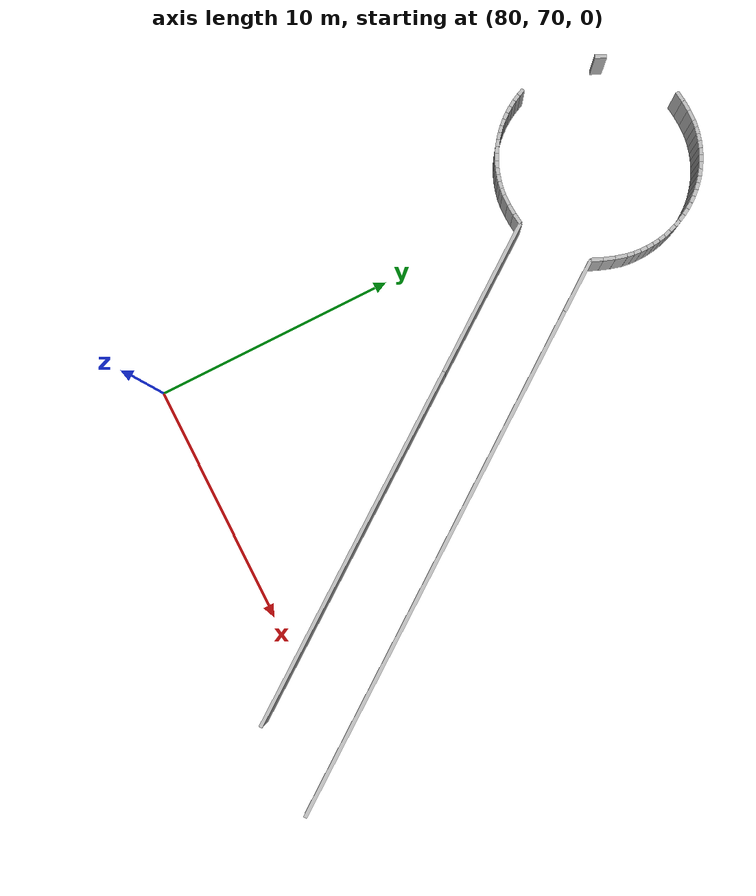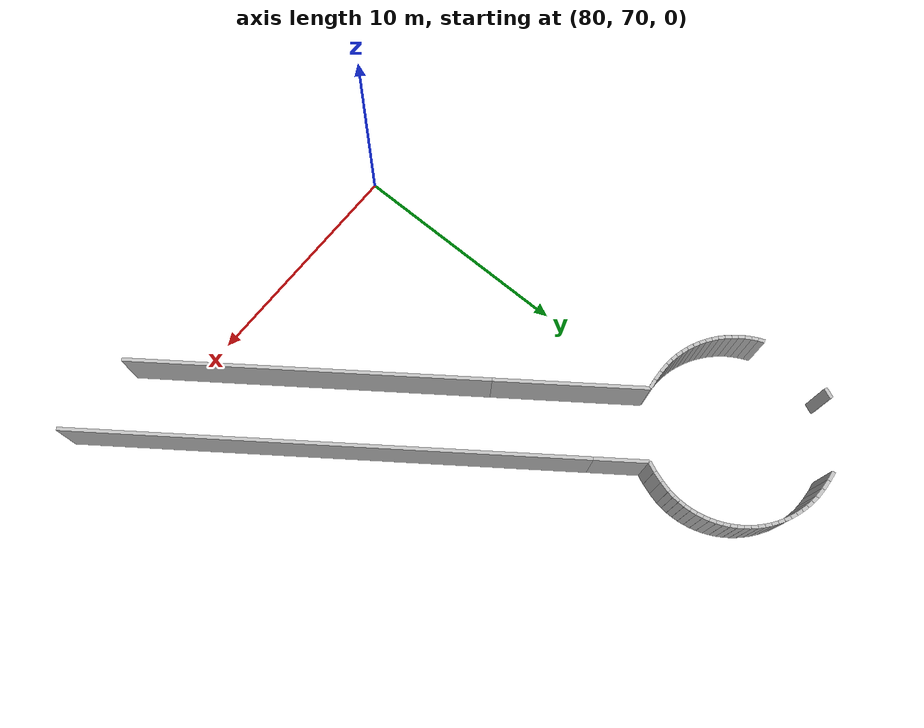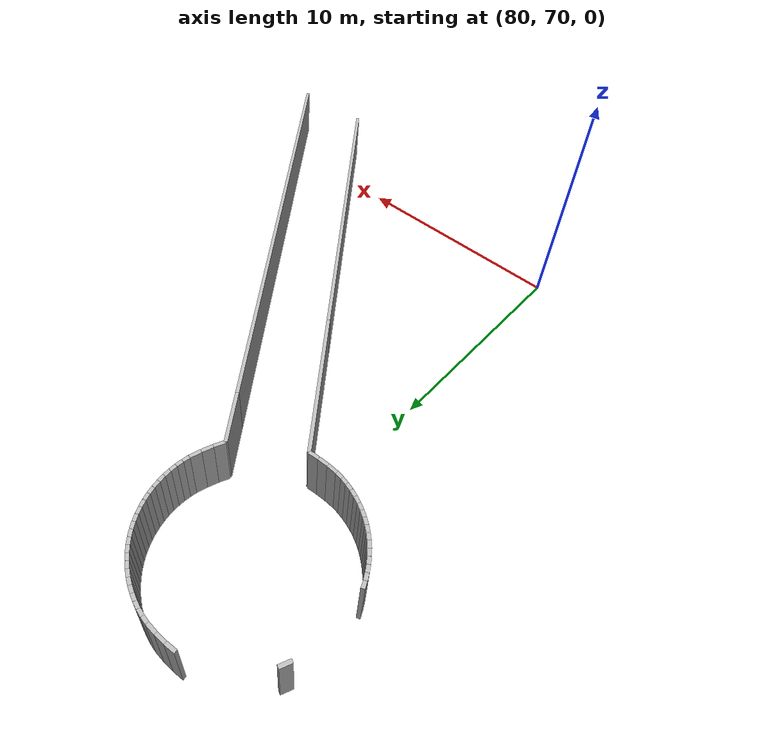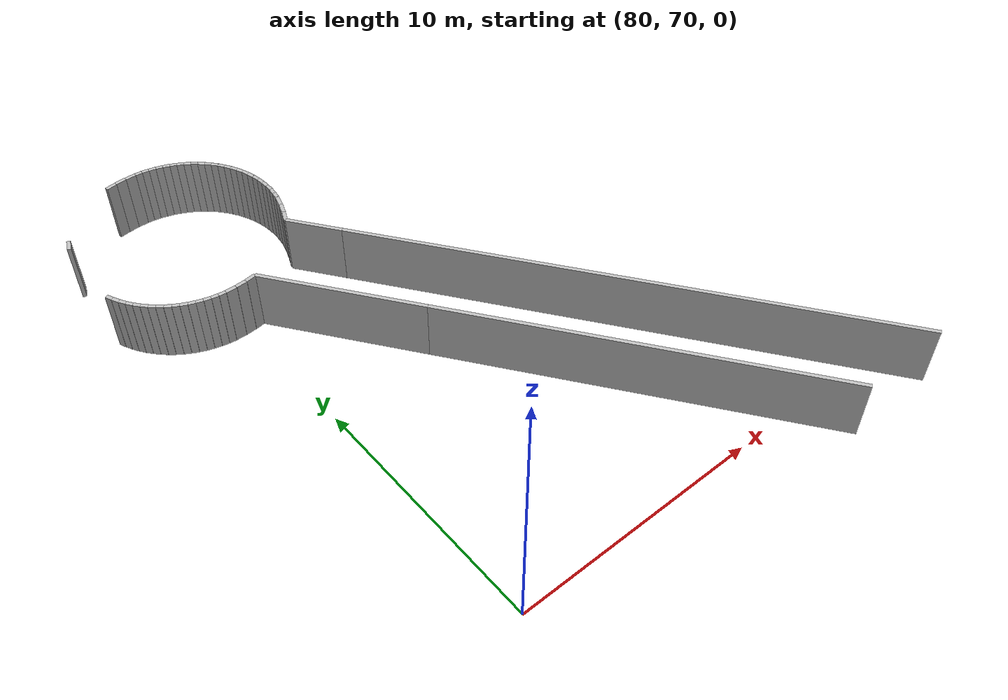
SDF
<sdf version="1.6">
 <model name="sps_2314">
  <static>1</static>
  <allow_auto_disable>0</allow_auto_disable>
  <link name="Wall168">
   <collision name="collision"><geometry><box><size>15.403 0.15 2.5</size></box></geometry></collision>
   <visual name="visual">
    <geometry><box><size>15.403 0.15 2.5</size></box></geometry>
    <transparency>0.0</transparency>
   </visual>
   <pose>89.0073 74.1157 1.25 0 -0 2.20088</pose>
  </link>
  <link name="Wall169">
   <collision name="collision"><geometry><box><size>6.53348 0.15 2.5</size></box></geometry></collision>
   <visual name="visual">
    <geometry><box><size>6.53348 0.15 2.5</size></box></geometry>
    <transparency>0.0</transparency>
   </visual>
   <pose>82.5446 82.9778 1.25 0 -0 2.20088</pose>
  </link>
  <link name="Wall401">
   <collision name="collision"><geometry><box><size>21.9145 0.15 2.5</size></box></geometry></collision>
   <visual name="visual">
    <geometry><box><size>21.9145 0.15 2.5</size></box></geometry>
    <transparency>0.0</transparency>
   </visual>
   <pose>90.9256 76.7463 1.25 0 -0 2.20088</pose>
  </link>
  <link name="Wall402">
   <collision name="collision"><geometry><box><size>2.26266 0.15 2.5</size></box></geometry></collision>
   <visual name="visual">
    <geometry><box><size>2.26266 0.15 2.5</size></box></geometry>
    <transparency>0.0</transparency>
   </visual>
   <pose>83.8028 86.5136 1.25 0 -0 2.20088</pose>
  </link>
  <link name="Wall4710">
   <collision name="collision"><geometry><box><size>0.474831 0.15 2.5</size></box></geometry></collision>
   <visual name="visual">
    <geometry><box><size>0.474831 0.15 2.5</size></box></geometry>
    <transparency>0.0</transparency>
   </visual>
   <pose>83.2309 87.6454 1.25 0 -0 1.16052</pose>
  </link>
  <link name="Wall4711">
   <collision name="collision"><geometry><box><size>0.474942 0.15 2.5</size></box></geometry></collision>
   <visual name="visual">
    <geometry><box><size>0.474942 0.15 2.5</size></box></geometry>
    <transparency>0.0</transparency>
   </visual>
   <pose>83.4048 88.087 1.25 0 -0 1.2308</pose>
  </link>
  <link name="Wall4712">
   <collision name="collision"><geometry><box><size>0.474892 0.15 2.5</size></box></geometry></collision>
   <visual name="visual">
    <geometry><box><size>0.474892 0.15 2.5</size></box></geometry>
    <transparency>0.0</transparency>
   </visual>
   <pose>83.5474 88.5397 1.25 0 -0 1.30044</pose>
  </link>
  <link name="Wall4713">
   <collision name="collision"><geometry><box><size>0.279036 0.15 2.5</size></box></geometry></collision>
   <visual name="visual">
    <geometry><box><size>0.279036 0.15 2.5</size></box></geometry>
    <transparency>0.0</transparency>
   </visual>
   <pose>83.6328 88.9063 1.25 0 -0 1.41309</pose>
  </link>
  <link name="Wall4714">
   <collision name="collision"><geometry><box><size>0.279262 0.15 2.5</size></box></geometry></collision>
   <visual name="visual">
    <geometry><box><size>0.279262 0.15 2.5</size></box></geometry>
    <transparency>0.0</transparency>
   </visual>
   <pose>83.6669 89.1832 1.25 0 -0 1.48348</pose>
  </link>
  <link name="Wall4715">
   <collision name="collision"><geometry><box><size>0.279277 0.15 2.5</size></box></geometry></collision>
   <visual name="visual">
    <geometry><box><size>0.279277 0.15 2.5</size></box></geometry>
    <transparency>0.0</transparency>
   </visual>
   <pose>83.6814 89.4619 1.25 0 -0 1.55353</pose>
  </link>
  <link name="Wall4716">
   <collision name="collision"><geometry><box><size>0.279129 0.15 2.5</size></box></geometry></collision>
   <visual name="visual">
    <geometry><box><size>0.279129 0.15 2.5</size></box></geometry>
    <transparency>0.0</transparency>
   </visual>
   <pose>83.6766 89.7409 1.25 0 -0 1.62308</pose>
  </link>
  <link name="Wall4717">
   <collision name="collision"><geometry><box><size>0.279276 0.15 2.5</size></box></geometry></collision>
   <visual name="visual">
    <geometry><box><size>0.279276 0.15 2.5</size></box></geometry>
    <transparency>0.0</transparency>
   </visual>
   <pose>83.6524 90.0189 1.25 0 -0 1.69217</pose>
  </link>
  <link name="Wall4718">
   <collision name="collision"><geometry><box><size>0.279108 0.15 2.5</size></box></geometry></collision>
   <visual name="visual">
    <geometry><box><size>0.279108 0.15 2.5</size></box></geometry>
    <transparency>0.0</transparency>
   </visual>
   <pose>83.6088 90.2945 1.25 0 -0 1.76266</pose>
  </link>
  <link name="Wall4719">
   <collision name="collision"><geometry><box><size>0.279094 0.15 2.5</size></box></geometry></collision>
   <visual name="visual">
    <geometry><box><size>0.279094 0.15 2.5</size></box></geometry>
    <transparency>0.0</transparency>
   </visual>
   <pose>83.5461 90.5663 1.25 0 -0 1.83248</pose>
  </link>
  <link name="Wall4720">
   <collision name="collision"><geometry><box><size>0.279281 0.15 2.5</size></box></geometry></collision>
   <visual name="visual">
    <geometry><box><size>0.279281 0.15 2.5</size></box></geometry>
    <transparency>0.0</transparency>
   </visual>
   <pose>83.4645 90.8331 1.25 0 -0 1.90271</pose>
  </link>
  <link name="Wall4721">
   <collision name="collision"><geometry><box><size>0.279157 0.15 2.5</size></box></geometry></collision>
   <visual name="visual">
    <geometry><box><size>0.279157 0.15 2.5</size></box></geometry>
    <transparency>0.0</transparency>
   </visual>
   <pose>83.3646 91.0936 1.25 0 -0 1.97173</pose>
  </link>
  <link name="Wall4722">
   <collision name="collision"><geometry><box><size>0.279161 0.15 2.5</size></box></geometry></collision>
   <visual name="visual">
    <geometry><box><size>0.279161 0.15 2.5</size></box></geometry>
    <transparency>0.0</transparency>
   </visual>
   <pose>83.2468 91.3465 1.25 0 -0 2.04168</pose>
  </link>
  <link name="Wall4723">
   <collision name="collision"><geometry><box><size>0.27925 0.15 2.5</size></box></geometry></collision>
   <visual name="visual">
    <geometry><box><size>0.27925 0.15 2.5</size></box></geometry>
    <transparency>0.0</transparency>
   </visual>
   <pose>83.1115 91.5906 1.25 0 -0 2.11174</pose>
  </link>
  <link name="Wall4724">
   <collision name="collision"><geometry><box><size>0.279196 0.15 2.5</size></box></geometry></collision>
   <visual name="visual">
    <geometry><box><size>0.279196 0.15 2.5</size></box></geometry>
    <transparency>0.0</transparency>
   </visual>
   <pose>82.9596 91.8247 1.25 0 -0 2.18093</pose>
  </link>
  <link name="Wall4725">
   <collision name="collision"><geometry><box><size>0.279133 0.15 2.5</size></box></geometry></collision>
   <visual name="visual">
    <geometry><box><size>0.279133 0.15 2.5</size></box></geometry>
    <transparency>0.0</transparency>
   </visual>
   <pose>82.7919 92.0476 1.25 0 -0 2.25117</pose>
  </link>
  <link name="Wall4726">
   <collision name="collision"><geometry><box><size>0.279366 0.15 2.5</size></box></geometry></collision>
   <visual name="visual">
    <geometry><box><size>0.279366 0.15 2.5</size></box></geometry>
    <transparency>0.0</transparency>
   </visual>
   <pose>82.6088 92.2583 1.25 0 -0 2.32081</pose>
  </link>
  <link name="Wall4727">
   <collision name="collision"><geometry><box><size>0.279188 0.15 2.5</size></box></geometry></collision>
   <visual name="visual">
    <geometry><box><size>0.279188 0.15 2.5</size></box></geometry>
    <transparency>0.0</transparency>
   </visual>
   <pose>82.4116 92.4557 1.25 0 -0 2.39098</pose>
  </link>
  <link name="Wall4728">
   <collision name="collision"><geometry><box><size>0.279295 0.15 2.5</size></box></geometry></collision>
   <visual name="visual">
    <geometry><box><size>0.279295 0.15 2.5</size></box></geometry>
    <transparency>0.0</transparency>
   </visual>
   <pose>82.2009 92.6388 1.25 0 -0 2.46084</pose>
  </link>
  <link name="Wall4729">
   <collision name="collision"><geometry><box><size>0.279136 0.15 2.5</size></box></geometry></collision>
   <visual name="visual">
    <geometry><box><size>0.279136 0.15 2.5</size></box></geometry>
    <transparency>0.0</transparency>
   </visual>
   <pose>81.9781 92.8068 1.25 0 -0 2.53024</pose>
  </link>
  <link name="Wall4730">
   <collision name="collision"><geometry><box><size>0.279094 0.15 2.5</size></box></geometry></collision>
   <visual name="visual">
    <geometry><box><size>0.279094 0.15 2.5</size></box></geometry>
    <transparency>0.0</transparency>
   </visual>
   <pose>81.7443 92.9588 1.25 0 -0 2.60031</pose>
  </link>
  <link name="Wall4731">
   <collision name="collision"><geometry><box><size>0.279216 0.15 2.5</size></box></geometry></collision>
   <visual name="visual">
    <geometry><box><size>0.279216 0.15 2.5</size></box></geometry>
    <transparency>0.0</transparency>
   </visual>
   <pose>81.5003 93.0941 1.25 0 -0 2.67032</pose>
  </link>
  <link name="Wall4732">
   <collision name="collision"><geometry><box><size>0.279252 0.15 2.5</size></box></geometry></collision>
   <visual name="visual">
    <geometry><box><size>0.279252 0.15 2.5</size></box></geometry>
    <transparency>0.0</transparency>
   </visual>
   <pose>81.2474 93.2121 1.25 0 -0 2.73986</pose>
  </link>
  <link name="Wall4733">
   <collision name="collision"><geometry><box><size>0.279223 0.15 2.5</size></box></geometry></collision>
   <visual name="visual">
    <geometry><box><size>0.279223 0.15 2.5</size></box></geometry>
    <transparency>0.0</transparency>
   </visual>
   <pose>80.9869 93.3122 1.25 0 -0 2.80961</pose>
  </link>
  <link name="Wall4734">
   <collision name="collision"><geometry><box><size>0.2792 0.15 2.5</size></box></geometry></collision>
   <visual name="visual">
    <geometry><box><size>0.2792 0.15 2.5</size></box></geometry>
    <transparency>0.0</transparency>
   </visual>
   <pose>80.7201 93.3939 1.25 0 -0 2.87933</pose>
  </link>
  <link name="Wall4735">
   <collision name="collision"><geometry><box><size>0.279108 0.15 2.5</size></box></geometry></collision>
   <visual name="visual">
    <geometry><box><size>0.279108 0.15 2.5</size></box></geometry>
    <transparency>0.0</transparency>
   </visual>
   <pose>80.4482 93.4567 1.25 0 -0 2.94973</pose>
  </link>
  <link name="Wall4736">
   <collision name="collision"><geometry><box><size>0.279078 0.15 2.5</size></box></geometry></collision>
   <visual name="visual">
    <geometry><box><size>0.279078 0.15 2.5</size></box></geometry>
    <transparency>0.0</transparency>
   </visual>
   <pose>80.1728 93.5004 1.25 0 -0 3.01881</pose>
  </link>
  <link name="Wall4737">
   <collision name="collision"><geometry><box><size>0.430657 0.15 2.5</size></box></geometry></collision>
   <visual name="visual">
    <geometry><box><size>0.430657 0.15 2.5</size></box></geometry>
    <transparency>0.0</transparency>
   </visual>
   <pose>79.819 93.5209 1.25 0 -0 3.12572</pose>
  </link>
  <link name="Wall4738">
   <collision name="collision"><geometry><box><size>0.431078 0.15 2.5</size></box></geometry></collision>
   <visual name="visual">
    <geometry><box><size>0.431078 0.15 2.5</size></box></geometry>
    <transparency>0.0</transparency>
   </visual>
   <pose>79.3884 93.5124 1.25 0 0 -3.08635</pose>
  </link>
  <link name="Wall4739">
   <collision name="collision"><geometry><box><size>0.430669 0.15 2.5</size></box></geometry></collision>
   <visual name="visual">
    <geometry><box><size>0.430669 0.15 2.5</size></box></geometry>
    <transparency>0.0</transparency>
   </visual>
   <pose>78.9596 93.4739 1.25 0 0 -3.01769</pose>
  </link>
  <link name="Wall8186">
   <collision name="collision"><geometry><box><size>0.473804 0.15 2.5</size></box></geometry></collision>
   <visual name="visual">
    <geometry><box><size>0.473804 0.15 2.5</size></box></geometry>
    <transparency>0.0</transparency>
   </visual>
   <pose>76.1366 91.4172 1.25 0 0 -1.98061</pose>
  </link>
  <link name="Wall8197">
   <collision name="collision"><geometry><box><size>0.279349 0.15 2.5</size></box></geometry></collision>
   <visual name="visual">
    <geometry><box><size>0.279349 0.15 2.5</size></box></geometry>
    <transparency>0.0</transparency>
   </visual>
   <pose>76.0037 87.9713 1.25 0 0 -1.16992</pose>
  </link>
  <link name="Wall8198">
   <collision name="collision"><geometry><box><size>0.279081 0.15 2.5</size></box></geometry></collision>
   <visual name="visual">
    <geometry><box><size>0.279081 0.15 2.5</size></box></geometry>
    <transparency>0.0</transparency>
   </visual>
   <pose>76.1217 87.7184 1.25 0 0 -1.09903</pose>
  </link>
  <link name="Wall8199">
   <collision name="collision"><geometry><box><size>0.279125 0.15 2.5</size></box></geometry></collision>
   <visual name="visual">
    <geometry><box><size>0.279125 0.15 2.5</size></box></geometry>
    <transparency>0.0</transparency>
   </visual>
   <pose>76.2569 87.4744 1.25 0 0 -1.0306</pose>
  </link>
  <link name="Wall8200">
   <collision name="collision"><geometry><box><size>0.279031 0.15 2.5</size></box></geometry></collision>
   <visual name="visual">
    <geometry><box><size>0.279031 0.15 2.5</size></box></geometry>
    <transparency>0.0</transparency>
   </visual>
   <pose>76.4087 87.2404 1.25 0 0 -0.959981</pose>
  </link>
  <link name="Wall8201">
   <collision name="collision"><geometry><box><size>0.279438 0.15 2.5</size></box></geometry></collision>
   <visual name="visual">
    <geometry><box><size>0.279438 0.15 2.5</size></box></geometry>
    <transparency>0.0</transparency>
   </visual>
   <pose>76.5766 87.0175 1.25 0 0 -0.890461</pose>
  </link>
  <link name="Wall8202">
   <collision name="collision"><geometry><box><size>0.279066 0.15 2.5</size></box></geometry></collision>
   <visual name="visual">
    <geometry><box><size>0.279066 0.15 2.5</size></box></geometry>
    <transparency>0.0</transparency>
   </visual>
   <pose>76.7595 86.8068 1.25 0 0 -0.820976</pose>
  </link>
  <link name="Wall8203">
   <collision name="collision"><geometry><box><size>0.279316 0.15 2.5</size></box></geometry></collision>
   <visual name="visual">
    <geometry><box><size>0.279316 0.15 2.5</size></box></geometry>
    <transparency>0.0</transparency>
   </visual>
   <pose>76.9567 86.6094 1.25 0 0 -0.75078</pose>
  </link>
  <link name="Wall8204">
   <collision name="collision"><geometry><box><size>0.279286 0.15 2.5</size></box></geometry></collision>
   <visual name="visual">
    <geometry><box><size>0.279286 0.15 2.5</size></box></geometry>
    <transparency>0.0</transparency>
   </visual>
   <pose>77.1674 86.4262 1.25 0 0 -0.681055</pose>
  </link>
  <link name="Wall8205">
   <collision name="collision"><geometry><box><size>0.279151 0.15 2.5</size></box></geometry></collision>
   <visual name="visual">
    <geometry><box><size>0.279151 0.15 2.5</size></box></geometry>
    <transparency>0.0</transparency>
   </visual>
   <pose>77.3902 86.2582 1.25 0 0 -0.611048</pose>
  </link>
  <link name="Wall8206">
   <collision name="collision"><geometry><box><size>0.279094 0.15 2.5</size></box></geometry></collision>
   <visual name="visual">
    <geometry><box><size>0.279094 0.15 2.5</size></box></geometry>
    <transparency>0.0</transparency>
   </visual>
   <pose>77.6241 86.1062 1.25 0 0 -0.541282</pose>
  </link>
  <link name="Wall8207">
   <collision name="collision"><geometry><box><size>0.279244 0.15 2.5</size></box></geometry></collision>
   <visual name="visual">
    <geometry><box><size>0.279244 0.15 2.5</size></box></geometry>
    <transparency>0.0</transparency>
   </visual>
   <pose>77.8681 85.9709 1.25 0 0 -0.471468</pose>
  </link>
  <link name="Wall8208">
   <collision name="collision"><geometry><box><size>0.279252 0.15 2.5</size></box></geometry></collision>
   <visual name="visual">
    <geometry><box><size>0.279252 0.15 2.5</size></box></geometry>
    <transparency>0.0</transparency>
   </visual>
   <pose>78.121 85.8529 1.25 0 0 -0.401735</pose>
  </link>
  <link name="Wall8209">
   <collision name="collision"><geometry><box><size>0.279163 0.15 2.5</size></box></geometry></collision>
   <visual name="visual">
    <geometry><box><size>0.279163 0.15 2.5</size></box></geometry>
    <transparency>0.0</transparency>
   </visual>
   <pose>78.3815 85.7529 1.25 0 0 -0.331361</pose>
  </link>
  <link name="Wall8210">
   <collision name="collision"><geometry><box><size>0.279142 0.15 2.5</size></box></geometry></collision>
   <visual name="visual">
    <geometry><box><size>0.279142 0.15 2.5</size></box></geometry>
    <transparency>0.0</transparency>
   </visual>
   <pose>78.6482 85.6713 1.25 0 0 -0.262321</pose>
  </link>
  <link name="Wall8211">
   <collision name="collision"><geometry><box><size>0.279383 0.15 2.5</size></box></geometry></collision>
   <visual name="visual">
    <geometry><box><size>0.279383 0.15 2.5</size></box></geometry>
    <transparency>0.0</transparency>
   </visual>
   <pose>78.9202 85.6084 1.25 0 0 -0.19234</pose>
  </link>
  <link name="Wall8212">
   <collision name="collision"><geometry><box><size>0.279078 0.15 2.5</size></box></geometry></collision>
   <visual name="visual">
    <geometry><box><size>0.279078 0.15 2.5</size></box></geometry>
    <transparency>0.0</transparency>
   </visual>
   <pose>79.1958 85.5646 1.25 0 0 -0.122782</pose>
  </link>
  <link name="Wall8213">
   <collision name="collision"><geometry><box><size>0.43004 0.15 2.5</size></box></geometry></collision>
   <visual name="visual">
    <geometry><box><size>0.43004 0.15 2.5</size></box></geometry>
    <transparency>0.0</transparency>
   </visual>
   <pose>79.5492 85.5443 1.25 0 0 -0.0149031</pose>
  </link>
  <link name="Wall8214">
   <collision name="collision"><geometry><box><size>0.429825 0.15 2.5</size></box></geometry></collision>
   <visual name="visual">
    <geometry><box><size>0.429825 0.15 2.5</size></box></geometry>
    <transparency>0.0</transparency>
   </visual>
   <pose>79.9788 85.5527 1.25 0 -0 0.0539862</pose>
  </link>
  <link name="Wall8215">
   <collision name="collision"><geometry><box><size>0.42967 0.15 2.5</size></box></geometry></collision>
   <visual name="visual">
    <geometry><box><size>0.42967 0.15 2.5</size></box></geometry>
    <transparency>0.0</transparency>
   </visual>
   <pose>80.4066 85.5908 1.25 0 -0 0.123615</pose>
  </link>
 </model>
</sdf>
